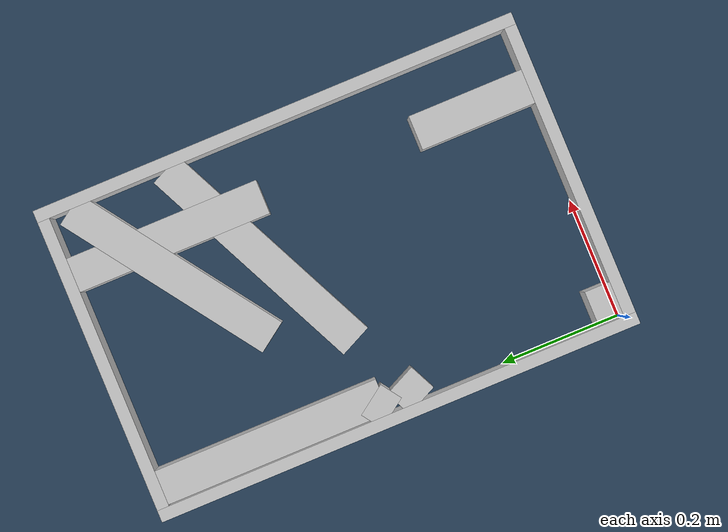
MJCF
<?xml version="1.0" ?>
<mujoco model="generated_real_template">
  <compiler angle="degree"/>
  <option timestep="0.002" integrator="implicitfast" iterations="100" cone="elliptic"/>
  <default>
    <geom density="1"/>
  </default>
  <asset>
    <texture builtin="gradient" height="3072" rgb1="0.3 0.5 0.7" rgb2="0 0 0" type="skybox" width="512"/>
    <texture builtin="checker" height="300" mark="edge" markrgb="0.8 0.8 0.8" name="groundplane" rgb1="0.2 0.3 0.4" rgb2="0.1 0.2 0.3" type="2d" width="300"/>
    <material name="groundplane" reflectance="0.2" texrepeat="5 5" texture="groundplane" texuniform="true"/>
  </asset>
  <worldbody>
    <light dir="0 0 -1" directional="true" pos="0 0 1.5"/>
    <geom name="floor" type="plane" condim="4" friction="0.5 0.005 0.001" material="groundplane" size="0 0 0.05"/>
    <body name="walls">
      <geom name="wall_boundary_left" type="box" condim="4" friction="1.0 0.005 0.0001" rgba="0.8 0.8 0.8 1" pos="-0.010000 0.387500 0.050000" euler="0 0 0.000000" size="0.010000 0.407500 0.050000"/>
      <geom name="wall_boundary_right" type="box" condim="4" friction="1.0 0.005 0.0001" rgba="0.8 0.8 0.8 1" pos="0.500000 0.387500 0.050000" euler="0 0 0.000000" size="0.010000 0.407500 0.050000"/>
      <geom name="wall_boundary_bottom" type="box" condim="4" friction="1.0 0.005 0.0001" rgba="0.8 0.8 0.8 1" pos="0.245000 -0.010000 0.050000" euler="0 0 0.000000" size="0.245000 0.010000 0.050000"/>
      <geom name="wall_boundary_top" type="box" condim="4" friction="1.0 0.005 0.0001" rgba="0.8 0.8 0.8 1" pos="0.245000 0.785000 0.050000" euler="0 0 0.000000" size="0.245000 0.010000 0.050000"/>
      <geom name="wall_inner_1_1" type="box" condim="4" friction="1.0 0.005 0.0001" rgba="0.8 0.8 0.8 1" pos="0.336113 0.631539 0.050000" euler="0 0 -144.874668" size="0.188150 0.028500 0.050000"/>
      <geom name="wall_inner_1_2" type="box" condim="4" friction="1.0 0.005 0.0001" rgba="0.8 0.8 0.8 1" pos="0.016000 0.406348 0.050000" euler="0 0 -144.874668" size="0.019562 0.028500 0.050000"/>
      <geom name="wall_inner_2_1" type="box" condim="4" friction="1.0 0.005 0.0001" rgba="0.8 0.8 0.8 1" pos="0.392178 0.095864 0.050000" euler="0 0 90.000000" size="0.095864 0.028500 0.050000"/>
      <geom name="wall_inner_2_2" type="box" condim="4" friction="1.0 0.005 0.0001" rgba="0.8 0.8 0.8 1" pos="0.392178 0.613443 0.050000" euler="0 0 90.000000" size="0.161557 0.028500 0.050000"/>
      <geom name="wall_inner_3_1" type="box" condim="4" friction="1.0 0.005 0.0001" rgba="0.8 0.8 0.8 1" pos="0.021314 0.354709 0.050000" euler="0 0 25.304185" size="0.023576 0.028500 0.050000"/>
      <geom name="wall_inner_3_2" type="box" condim="4" friction="1.0 0.005 0.0001" rgba="0.8 0.8 0.8 1" pos="0.308052 0.490275 0.050000" euler="0 0 25.304185" size="0.201259 0.028500 0.050000"/>
      <geom name="wall_inner_4_1" type="box" condim="4" friction="1.0 0.005 0.0001" rgba="0.8 0.8 0.8 1" pos="0.030665 0.021214 0.050000" euler="0 0 90.000000" size="0.021214 0.028500 0.050000"/>
      <geom name="wall_inner_4_2" type="box" condim="4" friction="1.0 0.005 0.0001" rgba="0.8 0.8 0.8 1" pos="0.030665 0.586716 0.050000" euler="0 0 90.000000" size="0.188284 0.028500 0.050000"/>
    </body>
  </worldbody>
</mujoco>
